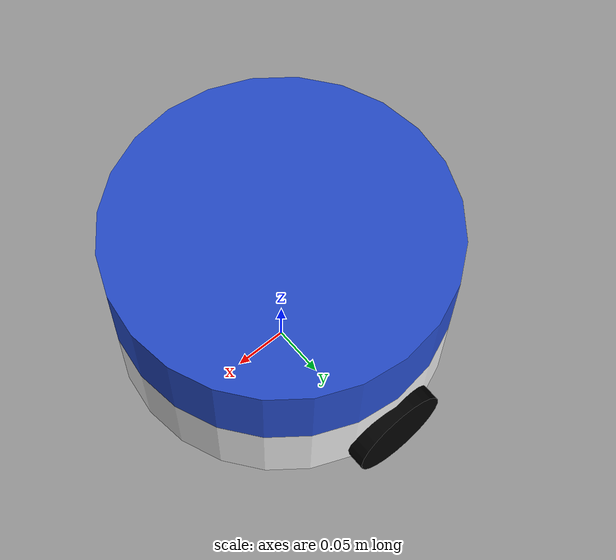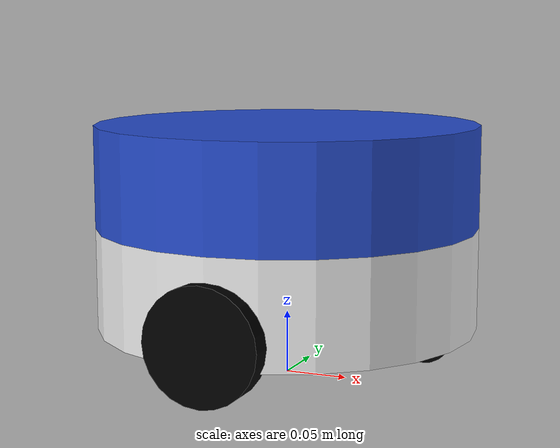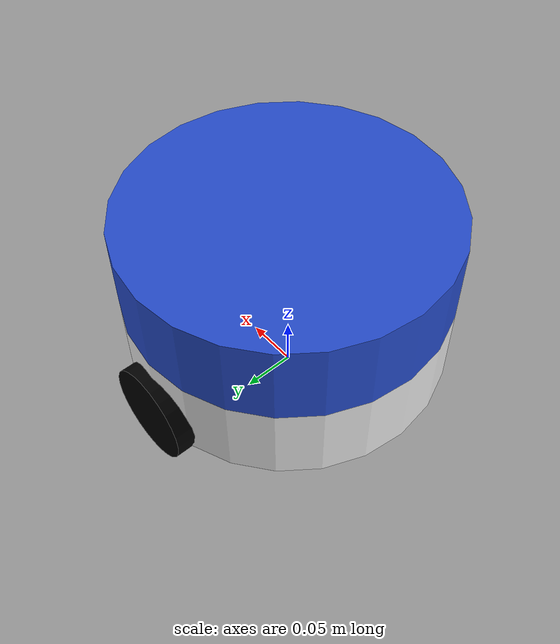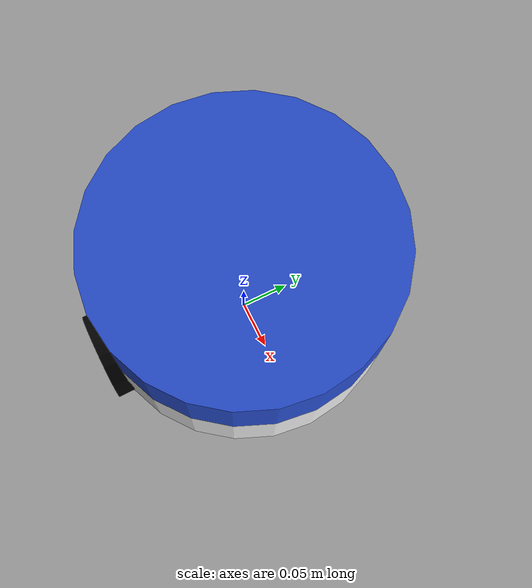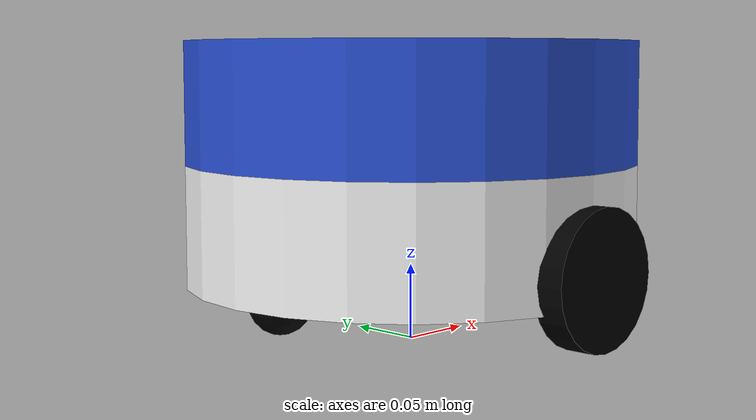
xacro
<?xml version="1.0"?>
<robot name="competbot" xmlns:xacro="http://ros.org/wiki/xacro">

    <xacro:include filename="$(find competbot_description)/urdf/settings.urdf.xacro"/>
    <xacro:include filename="$(find competbot_description)/urdf/colors.urdf.xacro"/>
    <xacro:include filename="$(find competbot_description)/urdf/structures.urdf.xacro"/>
    <xacro:include filename="$(find competbot_description)/urdf/wheel.urdf.xacro"/>
    <xacro:include filename="$(find competbot_description)/urdf/gazebo_plugins.urdf.xacro"/>

    <!-- CREATING LINKS -->
    <link name="base_footprint"></link>
    <xacro:create_cylinder name="base_link" xyz="0 0 0" rpy="0 0 0" radius="0.15" length="0.08" mass="0.2" color="White"/>
    <xacro:create_cylinder name="cover_link" xyz="0 0 0" rpy="0 0 0" radius="0.15" length="0.08" mass="0.2" color="Blue"/>
    <xacro:caster name="caster_front_link" xyz="0 0.02 0" rpy="${M_PI/2} 0 0" radius="${caster_f_radius}" mass="${caster_f_mass}"/>
    <xacro:caster name="caster_back_link" xyz="0 0.02 0" rpy="${M_PI/2} 0 0" radius="${caster_b_radius}" mass="${caster_b_mass}"/>

    <!-- CREATING JOINTS -->
    <xacro:fixed_joint name="root_joint" xyz="0 0 0.08" rpy="0 0 0" parent="base_footprint" child="base_link"/>
    <xacro:fixed_joint name="base_joint" xyz="0 0 0.08" rpy="0 0 0" parent="base_link" child="cover_link"/>
    <xacro:fixed_joint name="caster_front_joint" xyz="0.115 0.0 -0.02" rpy="${-M_PI/2} 0 0" parent="base_link" child="caster_front_link"/>
    <xacro:fixed_joint name="caster_back_joint" xyz="-0.115 0.0 -0.02" rpy="${-M_PI/2} 0 0" parent="base_link" child="caster_back_link"/>

    <!-- PUTTING WHEELS -->
    <xacro:wheel fb="front" lr="right" parent="base_link" translateX="0" translateY="-0.5" flipY="1"/>
	<xacro:wheel fb="front" lr="left" parent="base_link" translateX="0" translateY="0.5" flipY="1"/>

    <!-- SET COLORS -->
    <xacro:gazebo_color link="base_link" color="White"/>
    <xacro:gazebo_color link="cover_link" color="Blue"/>

    <!-- SET VELOCITY CONTROLLER -->
    <xacro:velocity_controller base_frame="base_footprint"
        ljoint="front_left_wheel_joint" rjoint="front_right_wheel_joint"
        wheel_separation="${2*0.15}" wheel_diameter="${2*wheel_radius}"/>

</robot>

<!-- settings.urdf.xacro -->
<robot xmlns:xacro="http://ros.org/wiki/xacro">

    <xacro:property name="caster_f_height" value="0.04"/>
    <xacro:property name="caster_f_radius" value="0.02"/>
    <xacro:property name="caster_f_mass" value="0.5"/>

    <xacro:property name="caster_b_height" value="0.04"/>
    <xacro:property name="caster_b_radius" value="0.02"/>
    <xacro:property name="caster_b_mass" value="0.5"/>

    <xacro:property name="M_PI" value="3.1415926535897931"/>

</robot>

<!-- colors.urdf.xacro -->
<robot xmlns:xacro="http://www.ros.org/wiki/xacro">

    <xacro:macro name="create_color" params="name value">
        <material name="${name}">
            <color rgba="${value}"/>
        </material>
    </xacro:macro>

    <xacro:macro name="gazebo_color" params="link color">
        <gazebo reference="${link}">
            <material>Gazebo/${color}</material>
        </gazebo>
    </xacro:macro>

    <xacro:create_color name="Black" value="0 0 0 1"/>
    <xacro:create_color name="Red" value="1 0 0 1"/>
    <xacro:create_color name="Green" value="0 1 0 1"/>
    <xacro:create_color name="Blue" value="0 0 1 1"/>
    <xacro:create_color name="White" value="1 1 1 1"/>

</robot>

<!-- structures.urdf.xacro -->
<robot xmlns:xacro="http://ros.org/wiki/xacro">

    <!-- CYLINDER INERTIA MATRIX -->
    <xacro:macro name="cylinder_inertia" params="m r h">
        <inertial>
            <mass value="${m}"/>
            <origin xyz="0 0 0"/>
            <inertia  ixx="${m*(3*r*r+h*h)/12}" ixy = "0" ixz = "0"
                    iyy="${m*(3*r*r+h*h)/12}" iyz = "0"
                    izz="${m*r*r/2}" />
        </inertial>
    </xacro:macro>

    <!-- CREATE CYLINDER LINK -->
    <xacro:macro name="create_cylinder" params="name xyz rpy radius length mass color">
        <link name="${name}">
            <visual>
                <origin xyz="${xyz}" rpy="${rpy}"/>
                <geometry>
                    <cylinder radius="${radius}" length="${length}"/>
                </geometry>
                <meterial name="${color}"/>
            </visual>
            <collision>
                <origin xyz="${xyz}" rpy="${rpy}"/>
                <geometry>
                    <cylinder radius="${radius}" length="${length}"/>
                </geometry>
            </collision>
            <xacro:cylinder_inertia m="${mass}" r="${radius}" h="${length}"/>
        </link>
    </xacro:macro>

    <!-- CREATE CASTER -->
    <xacro:macro name="caster" params="name xyz rpy radius mass">
        <link name="${name}">
            <visual>
                <origin xyz="${xyz}" rpy="${rpy}"/>
                <geometry>
                    <sphere radius="${radius}"/>
                </geometry>
                <material name="Black"/>
            </visual>
            <collision>
                <geometry>
                    <sphere radius="${radius}"/>
                </geometry>
                <origin xyz="${xyz}" rpy="${rpy}"/>
            </collision>
            <inertial>
                <mass value="${mass}"/>
                <origin xyz="${xyz}" />
                <inertia ixx="0.001" ixy="0.0" ixz="0.0"
                        iyy="0.001" iyz="0.0"
                        izz="0.001" />
            </inertial>
        </link>

        <gazebo reference="${name}">
            <material>Gazebo/Black</material>
            <turnGravityOff>false</turnGravityOff>
        </gazebo>
    </xacro:macro>

    <!-- CREATE FIXED JOINT -->
    <xacro:macro name="fixed_joint" params="name xyz rpy parent child">
        <joint name="${name}" type="fixed">
            <origin xyz="${xyz}" rpy="${rpy}" />
            <parent link="${parent}"/>
            <child link="${child}" />
        </joint>
    </xacro:macro>

</robot>

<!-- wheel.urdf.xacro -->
<robot name="wheel" xmlns:xacro="http://www.ros.org/wiki/xacro">

    <xacro:property name="wheel_radius" value="0.044"/>
    <xacro:property name="wheel_height" value="0.02"/>
    <xacro:property name="wheel_mass" value="2.5"/>

    <xacro:property name="base_x_origin_to_wheel_origin" value="0.25"/>
    <xacro:property name="base_y_origin_to_wheel_origin" value="0.3"/>
    <xacro:property name="base_z_origin_to_wheel_origin" value="-0.022"/>

    <xacro:macro name="wheel" params="fb lr parent translateX translateY flipY"> <!--fb : front, back ; lr: left, right -->
        <link name="${fb}_${lr}_wheel">
            <visual>
                <origin xyz="0 0 0" rpy="${flipY*M_PI/2} 0  0 "/>
                <geometry>
                    <cylinder length="${wheel_height}" radius="${wheel_radius}"/>
                </geometry>
                <material name="Black" />
            </visual>
            <collision>
                <origin xyz="0 0 0" rpy="${flipY*M_PI/2} 0 0 " />
                <geometry>
                    <cylinder length="${wheel_height}" radius="${wheel_radius}"/>
                </geometry>
            </collision>
            <inertial>
                <mass value="${wheel_mass}"/>
                <origin xyz="0 0 0"/>
                <inertia ixx="0.001" ixy="0.0" ixz="0.0"
                         iyy="0.001" iyz="0.0"
                         izz="0.001"/>
            </inertial>
        </link>

        <gazebo reference="${fb}_${lr}_wheel">
            <mu1 value="1.0"/>
            <mu2 value="1.0"/>
            <kp  value="10000000.0" />
            <kd  value="1.0" />
            <fdir1 value="1 0 0"/>
            <material>Gazebo/Grey</material>
            <turnGravityOff>false</turnGravityOff>
        </gazebo>

        <joint name="${fb}_${lr}_wheel_joint" type="continuous">
            <parent link="${parent}"/>
            <child link="${fb}_${lr}_wheel"/>
            <origin xyz="${translateX * base_x_origin_to_wheel_origin} ${translateY * base_y_origin_to_wheel_origin} ${base_z_origin_to_wheel_origin}" rpy="0 0 0" />
            <axis xyz="0 1 0" rpy="0 0 0" />
            <limit effort="100" velocity="100"/>
            <joint_properties damping="0.0" friction="0.0"/>
        </joint>

        <transmission name="${fb}_${lr}_wheel_joint_trans">
            <type>transmission_interface/SimpleTransmission</type>
            <joint name="${fb}_${lr}_wheel_joint" />
            <actuator name="${fb}_${lr}_wheel_joint_motor">
            <hardwareInterface>EffortJointInterface</hardwareInterface>
            <mechanicalReduction>1</mechanicalReduction>
            </actuator>
        </transmission>
    </xacro:macro>
</robot>
